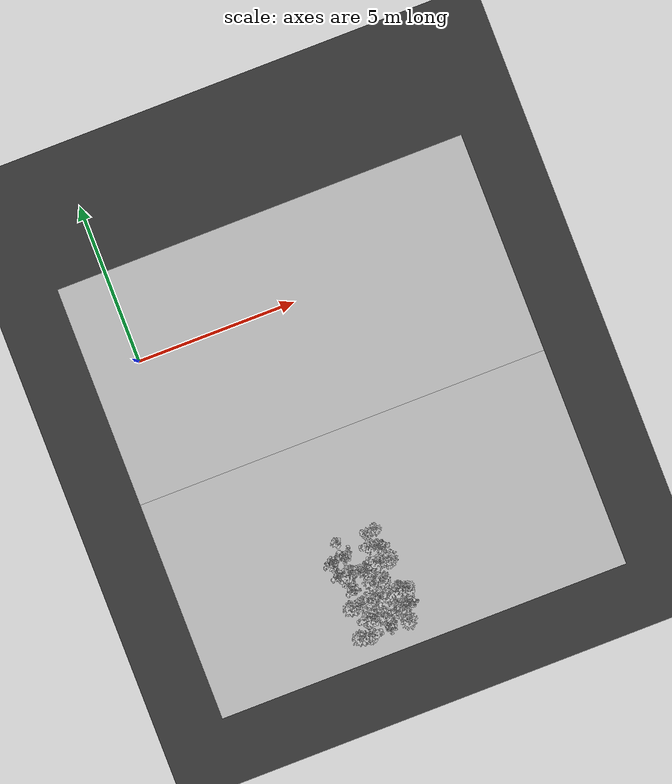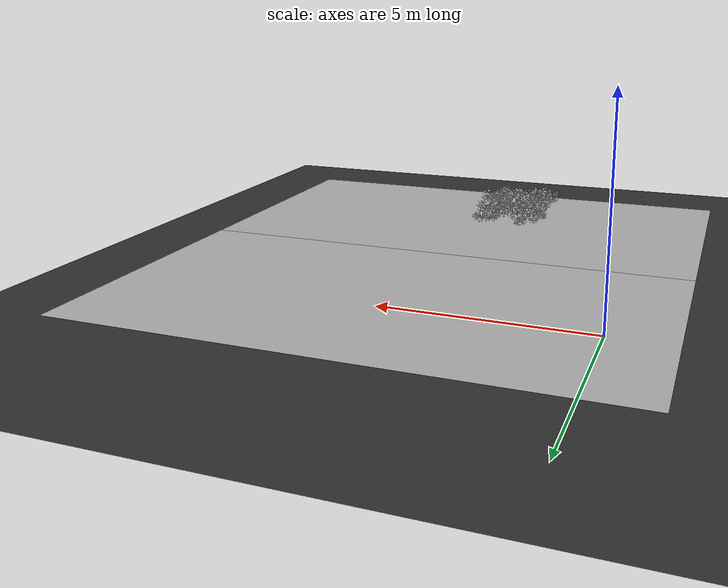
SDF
<sdf version="1.7">
 <world name="default">
  <model name="ground_plane">
   <static>1</static>
   <link name="link">
    <collision name="collision">
     <geometry><plane><normal>0 0 1</normal><size>100 100</size></plane></geometry>
     <surface>
      <contact><collide_bitmask>65535</collide_bitmask></contact>
      <friction><ode><mu>100</mu><mu2>50</mu2></ode></friction>
     </surface>
    </collision>
    <visual name="visual">
     <cast_shadows>0</cast_shadows>
     <geometry><plane><normal>0 0 1</normal><size>100 100</size></plane></geometry>
     <material>
      <ambient>0.2 0.2 0.2 1.0</ambient>
      <diffuse>0.2 0.2 0.2 1.0</diffuse>
      <specular>0.2 0.2 0.2 1.0</specular>
      <emissive>0.2 0.2 0.2 1.0</emissive>
     </material>
    </visual>
   </link>
  </model>
  <model name="ground">
   <pose>5 -0.5 0.01  3.141592654 0 0</pose>
   <static>true</static>
   <link name="body">
    <visual name="visual">
     <cast_shadows>0</cast_shadows>
     <geometry>
      <mesh><uri>file:///home/ifcosta/catkin_ws/src/cnn_line/worlds/models/ground.obj</uri></mesh>
     </geometry>
    </visual>
   </link>
  </model>
  <model name="ground_1">
   <pose>5 -7.4 0.01  3.1410592654 0 0</pose>
   <static>true</static>
   <link name="body">
    <visual name="visual">
     <cast_shadows>0</cast_shadows>
     <geometry>
      <mesh><uri>file:///home/ifcosta/catkin_ws/src/cnn_line/worlds/models/ground.obj</uri></mesh>
     </geometry>
    </visual>
   </link>
  </model>
  <model name="plt_30011">
   <pose>3.26 -10.2 0.0165 0.0 0.0 -0.16523</pose>
   <static>true</static>
   <link name="body">
    <visual name="visual">
     <geometry>
      <mesh><uri>file:///home/ifcosta/catkin_ws/src/cnn_line/worlds/models/plant35.obj</uri></mesh>
     </geometry>
    </visual>
   </link>
  </model>
  <model name="plt_20012">
   <pose>3.58 -7.24 0.012 0.0 0.0 1.1312</pose>
   <static>true</static>
   <link name="body">
    <visual name="visual">
     <geometry>
      <mesh><uri>file:///home/ifcosta/catkin_ws/src/cnn_line/worlds/models/plant20.obj</uri></mesh>
     </geometry>
    </visual>
   </link>
  </model>
  <model name="plt_30012">
   <pose>3.58 -10.2 0.012 0.0 0.0 -2.3557</pose>
   <static>true</static>
   <link name="body">
    <visual name="visual">
     <geometry>
      <mesh><uri>file:///home/ifcosta/catkin_ws/src/cnn_line/worlds/models/plant36.obj</uri></mesh>
     </geometry>
    </visual>
   </link>
  </model>
  <model name="plt_30014">
   <pose>4.19 -10.2 0.0128 0.0 0.0 -1.7118</pose>
   <static>true</static>
   <link name="body">
    <visual name="visual">
     <geometry>
      <mesh><uri>file:///home/ifcosta/catkin_ws/src/cnn_line/worlds/models/plant33.obj</uri></mesh>
     </geometry>
    </visual>
   </link>
  </model>
  <model name="plt_20015">
   <pose>4.51 -7.29 0.0145 0.0 0.0 -0.4392</pose>
   <static>true</static>
   <link name="body">
    <visual name="visual">
     <geometry>
      <mesh><uri>file:///home/ifcosta/catkin_ws/src/cnn_line/worlds/models/plant21.obj</uri></mesh>
     </geometry>
    </visual>
   </link>
  </model>
  <model name="plt_20016">
   <pose>4.81 -7.25 0.0153 0.0 0.0 -1.3693</pose>
   <static>true</static>
   <link name="body">
    <visual name="visual">
     <geometry>
      <mesh><uri>file:///home/ifcosta/catkin_ws/src/cnn_line/worlds/models/plant21.obj</uri></mesh>
     </geometry>
    </visual>
   </link>
  </model>
  <model name="plt_30016">
   <pose>4.81 -10.2 0.0153 0.0 0.0 1.1248</pose>
   <static>true</static>
   <link name="body">
    <visual name="visual">
     <geometry>
      <mesh><uri>file:///home/ifcosta/catkin_ws/src/cnn_line/worlds/models/plant35.obj</uri></mesh>
     </geometry>
    </visual>
   </link>
  </model>
  <model name="plt_30046">
   <pose>3.63 -9.72 0.0131 0.0 0.0 -0.42878</pose>
   <static>true</static>
   <link name="body">
    <visual name="visual">
     <geometry>
      <mesh><uri>file:///home/ifcosta/catkin_ws/src/cnn_line/worlds/models/plant31.obj</uri></mesh>
     </geometry>
    </visual>
   </link>
  </model>
  <model name="plt_30047">
   <pose>3.85 -9.76 0.0146 0.0 0.0 0.62716</pose>
   <static>true</static>
   <link name="body">
    <visual name="visual">
     <geometry>
      <mesh><uri>file:///home/ifcosta/catkin_ws/src/cnn_line/worlds/models/plant30.obj</uri></mesh>
     </geometry>
    </visual>
   </link>
  </model>
  <model name="plt_30048">
   <pose>4.19 -9.81 0.014 0.0 0.0 0.79037</pose>
   <static>true</static>
   <link name="body">
    <visual name="visual">
     <geometry>
      <mesh><uri>file:///home/ifcosta/catkin_ws/src/cnn_line/worlds/models/plant32.obj</uri></mesh>
     </geometry>
    </visual>
   </link>
  </model>
  <model name="plt_30049">
   <pose>4.54 -9.74 0.0166 0.0 0.0 -0.66349</pose>
   <static>true</static>
   <link name="body">
    <visual name="visual">
     <geometry>
      <mesh><uri>file:///home/ifcosta/catkin_ws/src/cnn_line/worlds/models/plant32.obj</uri></mesh>
     </geometry>
    </visual>
   </link>
  </model>
  <model name="plt_30050">
   <pose>4.78 -9.78 0.0175 0.0 0.0 0.28719</pose>
   <static>true</static>
   <link name="body">
    <visual name="visual">
     <geometry>
      <mesh><uri>file:///home/ifcosta/catkin_ws/src/cnn_line/worlds/models/plant35.obj</uri></mesh>
     </geometry>
    </visual>
   </link>
  </model>
  <model name="plt_30051">
   <pose>5.07 -9.73 0.0158 0.0 0.0 -1.7837</pose>
   <static>true</static>
   <link name="body">
    <visual name="visual">
     <geometry>
      <mesh><uri>file:///home/ifcosta/catkin_ws/src/cnn_line/worlds/models/plant34.obj</uri></mesh>
     </geometry>
    </visual>
   </link>
  </model>
  <model name="plt_30079">
   <pose>3.32 -9.27 0.0155 0.0 0.0 -0.020549</pose>
   <static>true</static>
   <link name="body">
    <visual name="visual">
     <geometry>
      <mesh><uri>file:///home/ifcosta/catkin_ws/src/cnn_line/worlds/models/plant35.obj</uri></mesh>
     </geometry>
    </visual>
   </link>
  </model>
  <model name="plt_30080">
   <pose>3.59 -9.25 0.0162 0.0 0.0 -0.40436</pose>
   <static>true</static>
   <link name="body">
    <visual name="visual">
     <geometry>
      <mesh><uri>file:///home/ifcosta/catkin_ws/src/cnn_line/worlds/models/plant31.obj</uri></mesh>
     </geometry>
    </visual>
   </link>
  </model>
  <model name="plt_30081">
   <pose>3.9 -9.23 0.0142 0.0 0.0 -0.26514</pose>
   <static>true</static>
   <link name="body">
    <visual name="visual">
     <geometry>
      <mesh><uri>file:///home/ifcosta/catkin_ws/src/cnn_line/worlds/models/plant32.obj</uri></mesh>
     </geometry>
    </visual>
   </link>
  </model>
  <model name="plt_30082">
   <pose>4.21 -9.24 0.0144 0.0 0.0 0.68455</pose>
   <static>true</static>
   <link name="body">
    <visual name="visual">
     <geometry>
      <mesh><uri>file:///home/ifcosta/catkin_ws/src/cnn_line/worlds/models/plant31.obj</uri></mesh>
     </geometry>
    </visual>
   </link>
  </model>
  <model name="plt_30083">
   <pose>4.52 -9.29 0.0153 0.0 0.0 -1.1706</pose>
   <static>true</static>
   <link name="body">
    <visual name="visual">
     <geometry>
      <mesh><uri>file:///home/ifcosta/catkin_ws/src/cnn_line/worlds/models/plant35.obj</uri></mesh>
     </geometry>
    </visual>
   </link>
  </model>
  <model name="plt_30084">
   <pose>4.83 -9.24 0.0156 0.0 0.0 0.33908</pose>
   <static>true</static>
   <link name="body">
    <visual name="visual">
     <geometry>
      <mesh><uri>file:///home/ifcosta/catkin_ws/src/cnn_line/worlds/models/plant30.obj</uri></mesh>
     </geometry>
    </visual>
   </link>
  </model>
  <model name="plt_30085">
   <pose>5.04 -9.27 0.013 0.0 0.0 -0.1353</pose>
   <static>true</static>
   <link name="body">
    <visual name="visual">
     <geometry>
      <mesh><uri>file:///home/ifcosta/catkin_ws/src/cnn_line/worlds/models/plant36.obj</uri></mesh>
     </geometry>
    </visual>
   </link>
  </model>
  <model name="plt_30114">
   <pose>3.57 -8.76 0.0151 0.0 0.0 -0.37031</pose>
   <static>true</static>
   <link name="body">
    <visual name="visual">
     <geometry>
      <mesh><uri>file:///home/ifcosta/catkin_ws/src/cnn_line/worlds/models/plant33.obj</uri></mesh>
     </geometry>
    </visual>
   </link>
  </model>
  <model name="plt_30116">
   <pose>4.14 -8.76 0.0131 0.0 0.0 -0.85702</pose>
   <static>true</static>
   <link name="body">
    <visual name="visual">
     <geometry>
      <mesh><uri>file:///home/ifcosta/catkin_ws/src/cnn_line/worlds/models/plant35.obj</uri></mesh>
     </geometry>
    </visual>
   </link>
  </model>
  <model name="plt_30117">
   <pose>4.47 -8.76 0.0148 0.0 0.0 -1.0781</pose>
   <static>true</static>
   <link name="body">
    <visual name="visual">
     <geometry>
      <mesh><uri>file:///home/ifcosta/catkin_ws/src/cnn_line/worlds/models/plant35.obj</uri></mesh>
     </geometry>
    </visual>
   </link>
  </model>
  <model name="plt_30147">
   <pose>3.32 -8.24 0.0153 0.0 0.0 -0.63487</pose>
   <static>true</static>
   <link name="body">
    <visual name="visual">
     <geometry>
      <mesh><uri>file:///home/ifcosta/catkin_ws/src/cnn_line/worlds/models/plant33.obj</uri></mesh>
     </geometry>
    </visual>
   </link>
  </model>
  <model name="plt_30148">
   <pose>3.61 -8.27 0.0126 0.0 0.0 0.42881</pose>
   <static>true</static>
   <link name="body">
    <visual name="visual">
     <geometry>
      <mesh><uri>file:///home/ifcosta/catkin_ws/src/cnn_line/worlds/models/plant30.obj</uri></mesh>
     </geometry>
    </visual>
   </link>
  </model>
  <model name="plt_30149">
   <pose>3.89 -8.27 0.0139 0.0 0.0 -1.2342</pose>
   <static>true</static>
   <link name="body">
    <visual name="visual">
     <geometry>
      <mesh><uri>file:///home/ifcosta/catkin_ws/src/cnn_line/worlds/models/plant31.obj</uri></mesh>
     </geometry>
    </visual>
   </link>
  </model>
  <model name="plt_30150">
   <pose>4.19 -8.26 0.0145 0.0 0.0 -0.012476</pose>
   <static>true</static>
   <link name="body">
    <visual name="visual">
     <geometry>
      <mesh><uri>file:///home/ifcosta/catkin_ws/src/cnn_line/worlds/models/plant34.obj</uri></mesh>
     </geometry>
    </visual>
   </link>
  </model>
  <model name="plt_30151">
   <pose>4.53 -8.23 0.0137 0.0 0.0 0.21215</pose>
   <static>true</static>
   <link name="body">
    <visual name="visual">
     <geometry>
      <mesh><uri>file:///home/ifcosta/catkin_ws/src/cnn_line/worlds/models/plant36.obj</uri></mesh>
     </geometry>
    </visual>
   </link>
  </model>
  <model name="plt_30152">
   <pose>4.87 -8.25 0.0126 0.0 0.0 -1.0378</pose>
   <static>true</static>
   <link name="body">
    <visual name="visual">
     <geometry>
      <mesh><uri>file:///home/ifcosta/catkin_ws/src/cnn_line/worlds/models/plant32.obj</uri></mesh>
     </geometry>
    </visual>
   </link>
  </model>
  <model name="plt_30181">
   <pose>3.32 -7.74 0.0137 0.0 0.0 0.75624</pose>
   <static>true</static>
   <link name="body">
    <visual name="visual">
     <geometry>
      <mesh><uri>file:///home/ifcosta/catkin_ws/src/cnn_line/worlds/models/plant33.obj</uri></mesh>
     </geometry>
    </visual>
   </link>
  </model>
  <model name="plt_30182">
   <pose>3.64 -7.73 0.018 0.0 0.0 -1.848</pose>
   <static>true</static>
   <link name="body">
    <visual name="visual">
     <geometry>
      <mesh><uri>file:///home/ifcosta/catkin_ws/src/cnn_line/worlds/models/plant33.obj</uri></mesh>
     </geometry>
    </visual>
   </link>
  </model>
  <model name="plt_30185">
   <pose>4.47 -7.7 0.0139 0.0 0.0 -0.66433</pose>
   <static>true</static>
   <link name="body">
    <visual name="visual">
     <geometry>
      <mesh><uri>file:///home/ifcosta/catkin_ws/src/cnn_line/worlds/models/plant31.obj</uri></mesh>
     </geometry>
    </visual>
   </link>
  </model>
  <model name="plt_30186">
   <pose>4.81 -7.74 0.0149 0.0 0.0 0.24586</pose>
   <static>true</static>
   <link name="body">
    <visual name="visual">
     <geometry>
      <mesh><uri>file:///home/ifcosta/catkin_ws/src/cnn_line/worlds/models/plant34.obj</uri></mesh>
     </geometry>
    </visual>
   </link>
  </model>
 </world>
</sdf>
